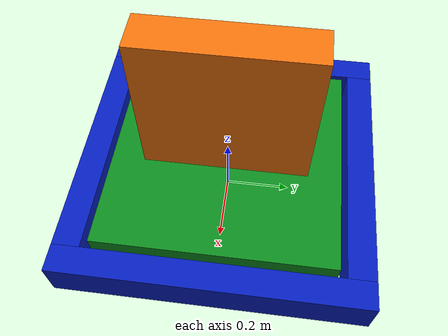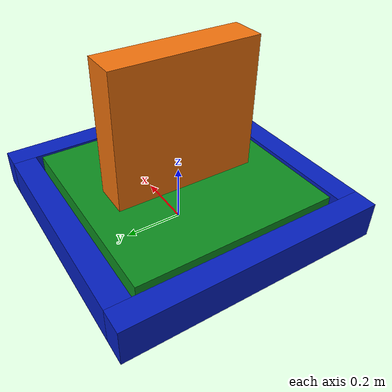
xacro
<?xml version="1.0"?>
<robot xmlns:xacro="http://www.ros.org/wiki/xacro" name="frc_2018_offseason">
  <!-- CAD-derived envelope; remeasure swerve pivots on the physical robot before full-speed use. -->
  <xacro:property name="bumper_size" value="0.89946"/>
  <xacro:property name="frame_size" value="0.702"/>
  <xacro:property name="base_height" value="0.17287"/>
  <xacro:property name="module_spacing" value="0.52470"/>
  <xacro:property name="wheel_radius" value="0.0508"/>
  <xacro:property name="wheel_width" value="0.0381"/>

  <material name="frc_green"><color rgba="0.05 0.55 0.12 1.0"/></material>
  <material name="bumper_blue"><color rgba="0.02 0.12 0.75 1.0"/></material>
  <material name="wheel_black"><color rgba="0.03 0.03 0.03 1.0"/></material>
  <material name="mechanism_orange"><color rgba="0.95 0.45 0.05 1.0"/></material>

  <link name="base_footprint"/>
  <link name="base_link">
    <visual>
      <origin xyz="0 0 ${base_height / 2.0}"/>
      <geometry><box size="${frame_size} ${frame_size} ${base_height}"/></geometry>
      <material name="frc_green"/>
    </visual>
    <collision>
      <origin xyz="0 0 ${base_height / 2.0}"/>
      <geometry><box size="${bumper_size} ${bumper_size} ${base_height}"/></geometry>
    </collision>
  </link>
  <joint name="base_footprint_to_base" type="fixed">
    <parent link="base_footprint"/><child link="base_link"/>
  </joint>

  <xacro:macro name="bumper_rail" params="name x y sx sy">
    <link name="${name}">
      <visual>
        <origin xyz="0 0 0.105"/>
        <geometry><box size="${sx} ${sy} 0.127"/></geometry>
        <material name="bumper_blue"/>
      </visual>
    </link>
    <joint name="${name}_joint" type="fixed">
      <parent link="base_link"/><child link="${name}"/><origin xyz="${x} ${y} 0"/>
    </joint>
  </xacro:macro>
  <xacro:bumper_rail name="front_bumper" x="${bumper_size / 2.0 - 0.04}" y="0" sx="0.08" sy="${bumper_size}"/>
  <xacro:bumper_rail name="rear_bumper" x="${-bumper_size / 2.0 + 0.04}" y="0" sx="0.08" sy="${bumper_size}"/>
  <xacro:bumper_rail name="left_bumper" x="0" y="${bumper_size / 2.0 - 0.04}" sx="${bumper_size - 0.16}" sy="0.08"/>
  <xacro:bumper_rail name="right_bumper" x="0" y="${-bumper_size / 2.0 + 0.04}" sx="${bumper_size - 0.16}" sy="0.08"/>

  <xacro:macro name="swerve_wheel" params="name x y">
    <link name="${name}_wheel">
      <visual>
        <origin rpy="${pi / 2.0} 0 0"/>
        <geometry><cylinder radius="${wheel_radius}" length="${wheel_width}"/></geometry>
        <material name="wheel_black"/>
      </visual>
    </link>
    <joint name="${name}_wheel_joint" type="fixed">
      <parent link="base_link"/><child link="${name}_wheel"/>
      <origin xyz="${x} ${y} ${wheel_radius}"/>
    </joint>
  </xacro:macro>
  <xacro:swerve_wheel name="front_left" x="${module_spacing / 2.0}" y="${module_spacing / 2.0}"/>
  <xacro:swerve_wheel name="front_right" x="${module_spacing / 2.0}" y="${-module_spacing / 2.0}"/>
  <xacro:swerve_wheel name="back_left" x="${-module_spacing / 2.0}" y="${module_spacing / 2.0}"/>
  <xacro:swerve_wheel name="back_right" x="${-module_spacing / 2.0}" y="${-module_spacing / 2.0}"/>

  <!-- Stowed mechanism proxy only; detailed moving joints are added after encoder geometry calibration. -->
  <link name="mechanism_proxy">
    <visual>
      <origin xyz="0 0 0.36"/>
      <geometry><box size="0.12 0.50 0.55"/></geometry>
      <material name="mechanism_orange"/>
    </visual>
  </link>
  <joint name="mechanism_proxy_joint" type="fixed">
    <parent link="base_link"/><child link="mechanism_proxy"/>
  </joint>

  <link name="camera_link"/>
  <joint name="camera_mount" type="fixed">
    <parent link="base_link"/><child link="camera_link"/>
    <origin xyz="0.30 0 0.35"/>
  </joint>
  <link name="camera_optical_frame"/>
  <joint name="camera_optical_joint" type="fixed">
    <parent link="camera_link"/><child link="camera_optical_frame"/>
    <origin rpy="${-pi / 2.0} 0 ${-pi / 2.0}"/>
  </joint>
</robot>
